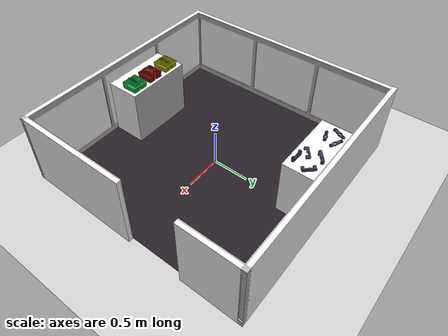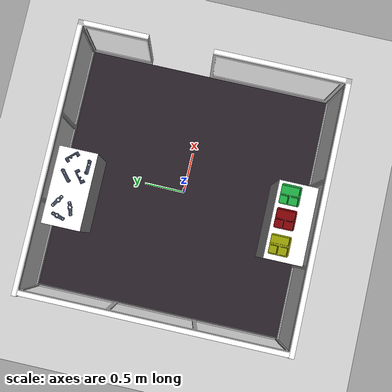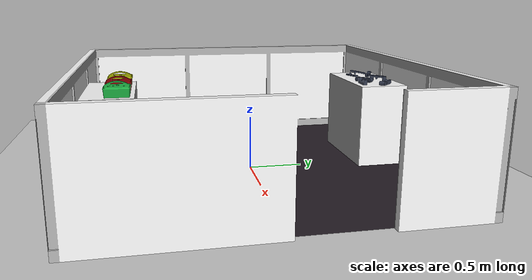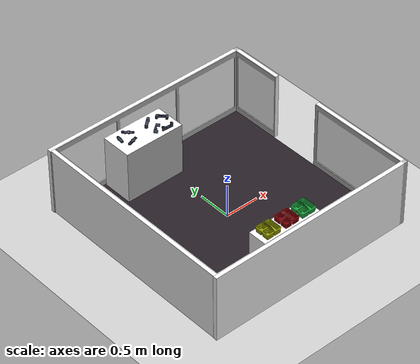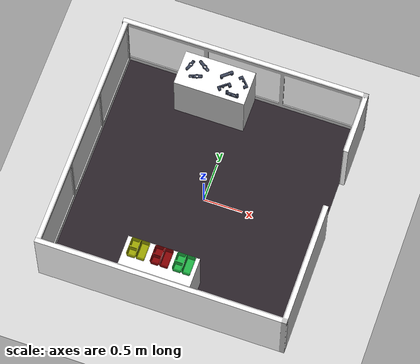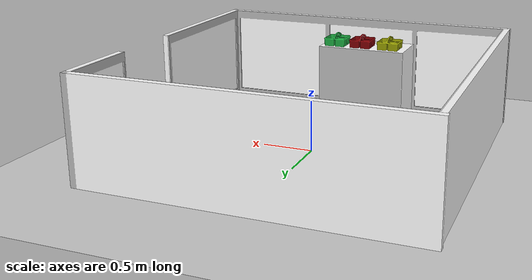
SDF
<?xml version="1.0" ?>
<sdf version="1.4">
  <world name="default">
    <gui>
      <camera name="user_camera">
        <pose>2 -2 5 0 1 2.356</pose>
      </camera>
    </gui>

    <include>
      <uri>model://ground_plane</uri>
      <pose>0 0 -0.005 0 0 0</pose>
    </include>

    <include>
      <uri>model://fetchit_arena</uri>
      <name>fetchit_arena1</name>
      <pose>0 0 0 0 0 0</pose>
    </include>

    <include>
      <uri>model://fetchit_table_sick</uri>
      <name>fetchit_table_sick1</name>
      <pose>-0.305 1.28179 0.0 0 0 0</pose>
    </include>

    <include>
      <uri>model://gearbox_bottom_grey</uri>
      <name>gearbox_bottom_grey1</name>
      <pose>-0.024991 1.128376 0.784992 0 0 3.105351</pose>
    </include>
    <include>
      <uri>model://gearbox_bottom_grey</uri>
      <name>gearbox_bottom_grey2</name>
      <pose>0.070919 1.347065 0.804964 -1.570796 0 2.317278</pose>
    </include>
    <include>
      <uri>model://gearbox_bottom_grey</uri>
      <name>gearbox_bottom_grey3</name>
      <pose>-0.173732 1.354286 0.837371 3.141545 0 -2.437420</pose>
    </include>
    <include>
      <uri>model://gearbox_bottom_grey</uri>
      <name>gearbox_bottom_grey4</name>
      <pose>-0.165214 1.215589 0.804963 -1.570796 0 -2.472675</pose>
    </include>

    <include>
      <uri>model://gearbox_top_grey</uri>
      <name>gearbox_top_grey1</name>
      <pose>-0.646720 1.331895 0.801285 0.000001 0.173592 1.290266</pose>
    </include>
    <include>
      <uri>model://gearbox_top_grey</uri>
      <name>gearbox_top_grey2</name>
      <pose>-0.534968 1.220576 0.796855 -3.141591 -0.000002 0.323833</pose>
    </include>
    <include>
      <uri>model://gearbox_top_grey</uri>
      <name>gearbox_top_grey3</name>
      <pose>-0.480600 1.380870 0.801318 0.034228 0.171042 -0.554048</pose>
    </include>

    <include>
      <uri>model://fetchit_table_fetch</uri>
      <name>fetchit_table_fetch1</name>
      <pose>-0.135 -1.28849 0.0 0 0 3.1416</pose>
    </include>

    <include>
      <uri>model://caddy_green</uri>
      <name>caddy_green1</name>
      <pose>0.168355 -1.20441 0.826729 0 0 0</pose>
    </include>

    <include>
      <uri>model://caddy_red</uri>
      <name>caddy_red1</name>
      <pose>-0.113059 -1.20441 0.826729 0 0 0</pose>
    </include>

    <include>
      <uri>model://caddy_yellow</uri>
      <name>caddy_yellow1</name>
      <pose>-0.414898 -1.20441 0.826729 0 0 0</pose>
    </include>

    <light name='user_point_light_0' type='point'>
      <pose frame=''>1.0 1.0 3.5 0 0 0</pose>
      <diffuse>0.7 0.7 0.7 1</diffuse>
      <specular>0.1 0.1 0.1 1</specular>
      <attenuation>
        <range>10</range>
        <constant>0.5</constant>
        <linear>0.01</linear>
        <quadratic>0.001</quadratic>
      </attenuation>
      <cast_shadows>0</cast_shadows>
      <direction>0 0 -1</direction>
    </light>

    <light name='user_point_light_1' type='point'>
      <pose frame=''>-1.0 1.0 3.5 0 0 0</pose>
      <diffuse>0.7 0.7 0.7 1</diffuse>
      <specular>0.1 0.1 0.1 1</specular>
      <attenuation>
        <range>10</range>
        <constant>0.5</constant>
        <linear>0.01</linear>
        <quadratic>0.001</quadratic>
      </attenuation>
      <cast_shadows>0</cast_shadows>
      <direction>0 0 -1</direction>
    </light>

    <light name='user_point_light_2' type='point'>
      <pose frame=''>-1.0 -1.0 3.5 0 0 0</pose>
      <diffuse>0.7 0.7 0.7 1</diffuse>
      <specular>0.1 0.1 0.1 1</specular>
      <attenuation>
        <range>10</range>
        <constant>0.5</constant>
        <linear>0.01</linear>
        <quadratic>0.001</quadratic>
      </attenuation>
      <cast_shadows>0</cast_shadows>
      <direction>0 0 -1</direction>
    </light>

    <light name='user_point_light_3' type='point'>
      <pose frame=''>1.0 -1.0 3.5 0 0 0</pose>
      <diffuse>0.7 0.7 0.7 1</diffuse>
      <specular>0.1 0.1 0.1 1</specular>
      <attenuation>
        <range>10</range>
        <constant>0.5</constant>
        <linear>0.01</linear>
        <quadratic>0.001</quadratic>
      </attenuation>
      <cast_shadows>0</cast_shadows>
      <direction>0 0 -1</direction>
    </light>

  </world>
</sdf>

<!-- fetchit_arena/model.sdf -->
<sdf version='1.4'>
  <model name="fetchit_simple_env">
      <static>1</static>
      <link name='link'>
        <visual name='visual'>
          <geometry>
            <mesh>
              <uri>model://fetchit_arena/meshes/fetchit_arena1.dae</uri>
              <scale>1 1 1</scale>
            </mesh>
          </geometry>
        </visual>
        <collision name='collision'>
          <geometry>
            <mesh>
              <uri>model://fetchit_arena/meshes/fetchit_arena1.dae</uri>
              <scale>1 1 1</scale>
            </mesh>
          </geometry>
          <surface>
            <friction>
              <ode>
                <mu>30.0</mu>
                <mu2>30.0</mu2>
              </ode>
            </friction>
            <contact>
              <ode>
                <soft_cfm>0</soft_cfm>
    	          <soft_erp>0.2</soft_erp>
    	          <kp>1e+13</kp>
    	          <kd>1</kd>
    	          <max_vel>0.01</max_vel>
    	          <min_depth>0</min_depth>
              </ode>
            </contact>
          </surface>
        </collision>
        <velocity_decay>
          <linear>0.000000</linear>
          <angular>0.000000</angular>
        </velocity_decay>
        <self_collide>0</self_collide>
        <kinematic>0</kinematic>
        <gravity>1</gravity>
      </link>
  </model>
</sdf>

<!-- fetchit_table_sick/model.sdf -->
<sdf version='1.4'>
  <model name="fetchit_table_sick">
      <static>1</static>
      <link name='link'>
        <inertial>
          <mass>0.0592855</mass>
          <inertia>
            <ixx>2.31818050784e-05</ixx>
            <ixy>0.000000</ixy>
            <ixz>0.000000</ixz>
            <iyy>2.31851837098e-05</iyy>
            <iyz>0.000000</iyz>
            <izz>8.88944636856e-06</izz>
          </inertia>
        </inertial>
        <collision name='collision'>
          <geometry>
            <mesh>
              <uri>model://fetchit_table_sick/meshes/simple_table.stl</uri>
              <scale>1 1 1</scale>
            </mesh>
          </geometry>
          <surface>
            <friction>
              <ode>
                <mu>30.0</mu>
                <mu2>30.0</mu2>
              </ode>
            </friction>
          </surface>
        </collision>
        <visual name='visual'>
          <geometry>
            <mesh>
              <uri>model://fetchit_table_sick/meshes/table_sick.dae</uri>
              <scale>1 1 1</scale>
            </mesh>
          </geometry>
        </visual>
        <velocity_decay>
          <linear>0.000000</linear>
          <angular>0.000000</angular>
        </velocity_decay>
        <self_collide>0</self_collide>
        <kinematic>0</kinematic>
        <gravity>1</gravity>
      </link>
  </model>
</sdf>

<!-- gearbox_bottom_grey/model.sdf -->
<sdf version='1.4'>
  <model name="gearbox_bottom_grey">
      <static>1</static>
      <link name='link'>
        <inertial>
          <pose>0 0 0.0261852 0 0 0</pose>
          <mass>0.3705614</mass>
          <inertia>
            <ixx>0.000131217258397</ixx>
            <ixy>0.000000</ixy>
            <ixz>0.000000</ixz>
            <iyy>0.000981017941434</iyy>
            <iyz>0.000000</iyz>
            <izz>0.000942847952626</izz>
          </inertia>
        </inertial>
        <collision name='collision'>
          <geometry>
            <mesh>
              <uri>model://gearbox_bottom_grey/meshes/gearbox_bottom_simple.stl</uri>
              <scale>1 1 1</scale>
            </mesh>
          </geometry>
          <surface>
            <friction>
              <ode>
                <mu>30.0</mu>
                <mu2>30.0</mu2>
              </ode>
            </friction>
          </surface>
        </collision>
        <visual name='visual'>
          <geometry>
            <mesh>
              <uri>model://gearbox_bottom_grey/meshes/gearBoxBottom_grey.dae</uri>
              <scale>1 1 1</scale>
            </mesh>
          </geometry>
        </visual>
        <velocity_decay>
          <linear>0.000000</linear>
          <angular>0.000000</angular>
        </velocity_decay>
        <self_collide>0</self_collide>
        <kinematic>0</kinematic>
        <gravity>1</gravity>
      </link>
  </model>
</sdf>

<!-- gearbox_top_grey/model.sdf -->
<sdf version='1.4'>
  <model name="gearbox_top_grey">
      <static>0</static>
      <link name='link'>
        <inertial>
          <pose>0 0 0 0 0 0</pose>
          <mass>0.2282587</mass>
          <inertia>
            <ixx>4.84526132205e-05</ixx>
            <ixy>0.000000</ixy>
            <ixz>0.000000</ixz>
            <iyy>0.000571913204992</iyy>
            <iyz>0.000000</iyz>
            <izz>0.000580776512074</izz>
          </inertia>
        </inertial>
        <collision name='collision'>
          <geometry>
            <mesh>
              <uri>model://gearbox_top_grey/meshes/gearBoxTop_v3.stl</uri>
              <scale>1 1 1</scale>
            </mesh>
          </geometry>
          <surface>
            <friction>
              <ode>
                <mu>30.0</mu>
                <mu2>30.0</mu2>
              </ode>
            </friction>
          </surface>
        </collision>
        <visual name='visual'>
          <geometry>
            <mesh>
              <uri>model://gearbox_top_grey/meshes/gearBoxTop_grey.dae</uri>
              <scale>1 1 1</scale>
            </mesh>
          </geometry>
        </visual>
        <velocity_decay>
          <linear>0.000000</linear>
          <angular>0.000000</angular>
        </velocity_decay>
        <self_collide>0</self_collide>
        <kinematic>0</kinematic>
        <gravity>1</gravity>
      </link>
  </model>
</sdf>

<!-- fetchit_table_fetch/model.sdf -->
<sdf version='1.4'>
  <model name="fetchit_table_fetch">
      <static>1</static>
      <link name='link'>
        <inertial>
          <mass>0.0592855</mass>
          <inertia>
            <ixx>2.31818050784e-05</ixx>
            <ixy>0.000000</ixy>
            <ixz>0.000000</ixz>
            <iyy>2.31851837098e-05</iyy>
            <iyz>0.000000</iyz>
            <izz>8.88944636856e-06</izz>
          </inertia>
        </inertial>
        <collision name='collision'>
          <geometry>
            <mesh>
              <uri>model://fetchit_table_fetch/meshes/simple_table.stl</uri>
              <scale>1 1 1</scale>
            </mesh>
          </geometry>
          <surface>
            <friction>
              <ode>
                <mu>30.0</mu>
                <mu2>30.0</mu2>
              </ode>
            </friction>
          </surface>
        </collision>
        <visual name='visual'>
          <geometry>
            <mesh>
              <uri>model://fetchit_table_fetch/meshes/table_fetch.dae</uri>
              <scale>1 1 1</scale>
            </mesh>
          </geometry>
        </visual>
        <velocity_decay>
          <linear>0.000000</linear>
          <angular>0.000000</angular>
        </velocity_decay>
        <self_collide>0</self_collide>
        <kinematic>0</kinematic>
        <gravity>1</gravity>
      </link>
  </model>
</sdf>

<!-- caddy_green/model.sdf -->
<sdf version='1.4'>
  <model name="caddy_green">
      <static>1</static>
      <link name='link'>
        <inertial>
          <mass>0.0680389</mass>
          <inertia>
            <ixx>0.00040636575898</ixx>
            <ixy>0.000000</ixy>
            <ixz>0.000000</ixz>
            <iyy>0.00040636575898</iyy>
            <iyz>0.000000</iyz>
            <izz>0.000625974918075</izz>
          </inertia>
        </inertial>
        <collision name='collision'>
          <geometry>
            <mesh>
              <uri>model://caddy_green/meshes/Romanoff_Small_Utility_Caddy_cof.stl</uri>
              <scale>1 1 1</scale>
            </mesh>
          </geometry>
          <surface>
            <friction>
              <ode>
                <mu>1.0</mu>
                <mu2>1.0</mu2>
              </ode>
            </friction>
          </surface>
        </collision>

        <visual name='visual'>
          <geometry>
            <mesh>
              <uri>model://caddy_green/meshes/Romanoff_Small_Utility_Caddy_cof_green.dae</uri>
              <scale>1 1 1</scale>
            </mesh>
          </geometry>
        </visual>
        <velocity_decay>
          <linear>0.000000</linear>
          <angular>0.000000</angular>
        </velocity_decay>
        <self_collide>0</self_collide>
        <kinematic>0</kinematic>
        <gravity>1</gravity>
      </link>
  </model>
</sdf>

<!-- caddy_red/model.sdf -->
<sdf version='1.4'>
  <model name="caddy_red">
      <static>1</static>
      <link name='link'>
        <inertial>
          <mass>0.0680389</mass>
          <inertia>
            <ixx>0.00040636575898</ixx>
            <ixy>0.000000</ixy>
            <ixz>0.000000</ixz>
            <iyy>0.00040636575898</iyy>
            <iyz>0.000000</iyz>
            <izz>0.000625974918075</izz>
          </inertia>
        </inertial>
        <collision name='collision'>
          <geometry>
            <mesh>
              <uri>model://caddy_red/meshes/Romanoff_Small_Utility_Caddy_cof.stl</uri>
              <scale>1 1 1</scale>
            </mesh>
          </geometry>
          <surface>
            <friction>
              <ode>
                <mu>1.0</mu>
                <mu2>1.0</mu2>
              </ode>
            </friction>
          </surface>
        </collision>

        <visual name='visual'>
          <geometry>
            <mesh>
              <uri>model://caddy_red/meshes/Romanoff_Small_Utility_Caddy_cof_red.dae</uri>
              <scale>1 1 1</scale>
            </mesh>
          </geometry>
        </visual>
        <velocity_decay>
          <linear>0.000000</linear>
          <angular>0.000000</angular>
        </velocity_decay>
        <self_collide>0</self_collide>
        <kinematic>0</kinematic>
        <gravity>1</gravity>
      </link>
  </model>
</sdf>

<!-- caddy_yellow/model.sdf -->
<sdf version='1.4'>
  <model name="caddy_yellow">
      <static>1</static>
      <link name='link'>
        <inertial>
          <mass>0.0680389</mass>
          <inertia>
            <ixx>0.00040636575898</ixx>
            <ixy>0.000000</ixy>
            <ixz>0.000000</ixz>
            <iyy>0.00040636575898</iyy>
            <iyz>0.000000</iyz>
            <izz>0.000625974918075</izz>
          </inertia>
        </inertial>
        <collision name='collision'>
          <geometry>
            <mesh>
              <uri>model://caddy_yellow/meshes/Romanoff_Small_Utility_Caddy_cof.stl</uri>
              <scale>1 1 1</scale>
            </mesh>
          </geometry>
          <surface>
            <friction>
              <ode>
                <mu>1.0</mu>
                <mu2>1.0</mu2>
              </ode>
            </friction>
          </surface>
        </collision>

        <visual name='visual'>
          <geometry>
            <mesh>
              <uri>model://caddy_yellow/meshes/Romanoff_Small_Utility_Caddy_cof_yellow.dae</uri>
              <scale>1 1 1</scale>
            </mesh>
          </geometry>
        </visual>
        <velocity_decay>
          <linear>0.000000</linear>
          <angular>0.000000</angular>
        </velocity_decay>
        <self_collide>0</self_collide>
        <kinematic>0</kinematic>
        <gravity>1</gravity>
      </link>
  </model>
</sdf>
